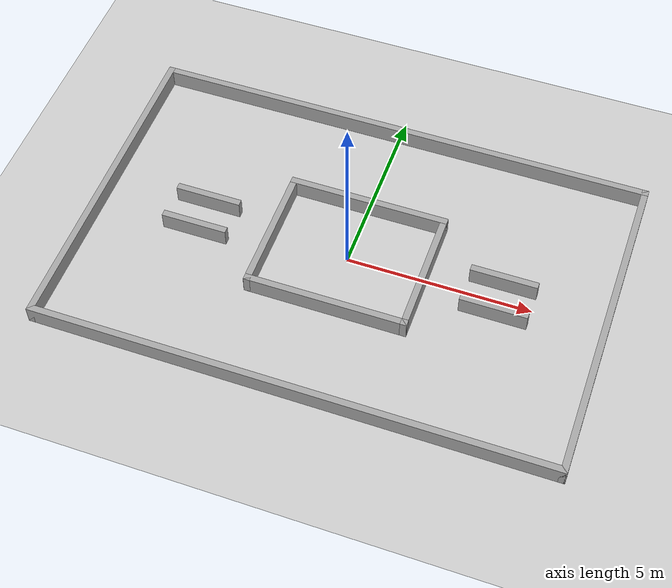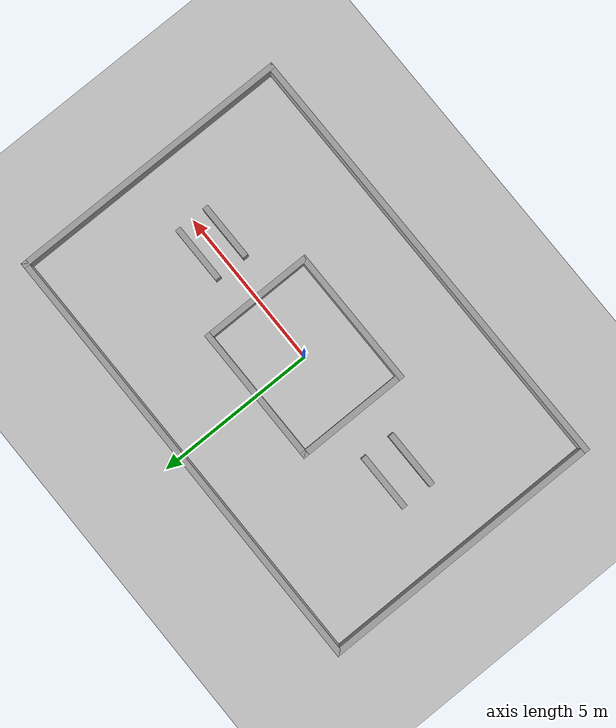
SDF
<?xml version='1.0'?>
<sdf version='1.7'>
  <world name='office_loop'>
    <physics name='1ms' type='ignored'>
      <max_step_size>0.001</max_step_size>
      <real_time_factor>1.0</real_time_factor>
    </physics>
    <plugin filename='gz-sim-physics-system' name='gz::sim::systems::Physics'/>
    <plugin filename='gz-sim-user-commands-system' name='gz::sim::systems::UserCommands'/>
    <plugin filename='gz-sim-scene-broadcaster-system' name='gz::sim::systems::SceneBroadcaster'/>
    <light type='directional' name='sun'>
      <cast_shadows>true</cast_shadows>
      <pose>0 0 10 0 0 0</pose>
      <diffuse>0.8 0.8 0.8 1</diffuse>
      <specular>0.2 0.2 0.2 1</specular>
      <direction>-0.5 0.1 -0.9</direction>
    </light>
    <model name='ground_plane'>
      <static>true</static>
      <link name='link'>
        <collision name='collision'><geometry><plane><normal>0 0 1</normal><size>30 30</size></plane></geometry></collision>
        <visual name='visual'><geometry><plane><normal>0 0 1</normal><size>30 30</size></plane></geometry><material><ambient>0.8 0.8 0.8 1</ambient><diffuse>0.8 0.8 0.8 1</diffuse></material></visual>
      </link>
    </model>

    <model name='wall_0'>
      <static>true</static>
      <pose>0.000 -4.410 0.250 0 0 0</pose>
      <link name='link'>
        <collision name='collision'>
          <geometry><box><size>14.000 0.180 0.500</size></box></geometry>
        </collision>
        <visual name='visual'>
          <geometry><box><size>14.000 0.180 0.500</size></box></geometry>
          <material><ambient>0.65 0.65 0.65 1</ambient><diffuse>0.65 0.65 0.65 1</diffuse></material>
        </visual>
      </link>
    </model>

    <model name='wall_1'>
      <static>true</static>
      <pose>0.000 4.410 0.250 0 0 0</pose>
      <link name='link'>
        <collision name='collision'>
          <geometry><box><size>14.000 0.180 0.500</size></box></geometry>
        </collision>
        <visual name='visual'>
          <geometry><box><size>14.000 0.180 0.500</size></box></geometry>
          <material><ambient>0.65 0.65 0.65 1</ambient><diffuse>0.65 0.65 0.65 1</diffuse></material>
        </visual>
      </link>
    </model>

    <model name='wall_2'>
      <static>true</static>
      <pose>-6.910 0.000 0.250 0 0 0</pose>
      <link name='link'>
        <collision name='collision'>
          <geometry><box><size>0.180 9.000 0.500</size></box></geometry>
        </collision>
        <visual name='visual'>
          <geometry><box><size>0.180 9.000 0.500</size></box></geometry>
          <material><ambient>0.65 0.65 0.65 1</ambient><diffuse>0.65 0.65 0.65 1</diffuse></material>
        </visual>
      </link>
    </model>

    <model name='wall_3'>
      <static>true</static>
      <pose>6.910 0.000 0.250 0 0 0</pose>
      <link name='link'>
        <collision name='collision'>
          <geometry><box><size>0.180 9.000 0.500</size></box></geometry>
        </collision>
        <visual name='visual'>
          <geometry><box><size>0.180 9.000 0.500</size></box></geometry>
          <material><ambient>0.65 0.65 0.65 1</ambient><diffuse>0.65 0.65 0.65 1</diffuse></material>
        </visual>
      </link>
    </model>

    <model name='wall_4'>
      <static>true</static>
      <pose>0.000 -1.710 0.250 0 0 0</pose>
      <link name='link'>
        <collision name='collision'>
          <geometry><box><size>4.400 0.180 0.500</size></box></geometry>
        </collision>
        <visual name='visual'>
          <geometry><box><size>4.400 0.180 0.500</size></box></geometry>
          <material><ambient>0.65 0.65 0.65 1</ambient><diffuse>0.65 0.65 0.65 1</diffuse></material>
        </visual>
      </link>
    </model>

    <model name='wall_5'>
      <static>true</static>
      <pose>0.000 1.710 0.250 0 0 0</pose>
      <link name='link'>
        <collision name='collision'>
          <geometry><box><size>4.400 0.180 0.500</size></box></geometry>
        </collision>
        <visual name='visual'>
          <geometry><box><size>4.400 0.180 0.500</size></box></geometry>
          <material><ambient>0.65 0.65 0.65 1</ambient><diffuse>0.65 0.65 0.65 1</diffuse></material>
        </visual>
      </link>
    </model>

    <model name='wall_6'>
      <static>true</static>
      <pose>-2.110 0.000 0.250 0 0 0</pose>
      <link name='link'>
        <collision name='collision'>
          <geometry><box><size>0.180 3.600 0.500</size></box></geometry>
        </collision>
        <visual name='visual'>
          <geometry><box><size>0.180 3.600 0.500</size></box></geometry>
          <material><ambient>0.65 0.65 0.65 1</ambient><diffuse>0.65 0.65 0.65 1</diffuse></material>
        </visual>
      </link>
    </model>

    <model name='wall_7'>
      <static>true</static>
      <pose>2.110 0.000 0.250 0 0 0</pose>
      <link name='link'>
        <collision name='collision'>
          <geometry><box><size>0.180 3.600 0.500</size></box></geometry>
        </collision>
        <visual name='visual'>
          <geometry><box><size>0.180 3.600 0.500</size></box></geometry>
          <material><ambient>0.65 0.65 0.65 1</ambient><diffuse>0.65 0.65 0.65 1</diffuse></material>
        </visual>
      </link>
    </model>

    <model name='wall_8'>
      <static>true</static>
      <pose>-4.100 0.490 0.250 0 0 0</pose>
      <link name='link'>
        <collision name='collision'>
          <geometry><box><size>1.800 0.180 0.500</size></box></geometry>
        </collision>
        <visual name='visual'>
          <geometry><box><size>1.800 0.180 0.500</size></box></geometry>
          <material><ambient>0.65 0.65 0.65 1</ambient><diffuse>0.65 0.65 0.65 1</diffuse></material>
        </visual>
      </link>
    </model>

    <model name='wall_9'>
      <static>true</static>
      <pose>4.100 0.490 0.250 0 0 0</pose>
      <link name='link'>
        <collision name='collision'>
          <geometry><box><size>1.800 0.180 0.500</size></box></geometry>
        </collision>
        <visual name='visual'>
          <geometry><box><size>1.800 0.180 0.500</size></box></geometry>
          <material><ambient>0.65 0.65 0.65 1</ambient><diffuse>0.65 0.65 0.65 1</diffuse></material>
        </visual>
      </link>
    </model>

    <model name='wall_10'>
      <static>true</static>
      <pose>-4.100 -0.490 0.250 0 0 0</pose>
      <link name='link'>
        <collision name='collision'>
          <geometry><box><size>1.800 0.180 0.500</size></box></geometry>
        </collision>
        <visual name='visual'>
          <geometry><box><size>1.800 0.180 0.500</size></box></geometry>
          <material><ambient>0.65 0.65 0.65 1</ambient><diffuse>0.65 0.65 0.65 1</diffuse></material>
        </visual>
      </link>
    </model>

    <model name='wall_11'>
      <static>true</static>
      <pose>4.100 -0.490 0.250 0 0 0</pose>
      <link name='link'>
        <collision name='collision'>
          <geometry><box><size>1.800 0.180 0.500</size></box></geometry>
        </collision>
        <visual name='visual'>
          <geometry><box><size>1.800 0.180 0.500</size></box></geometry>
          <material><ambient>0.65 0.65 0.65 1</ambient><diffuse>0.65 0.65 0.65 1</diffuse></material>
        </visual>
      </link>
    </model>
  </world>
</sdf>
